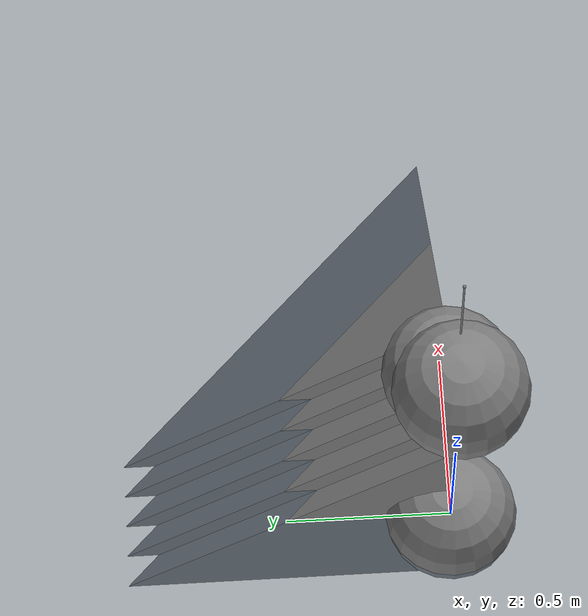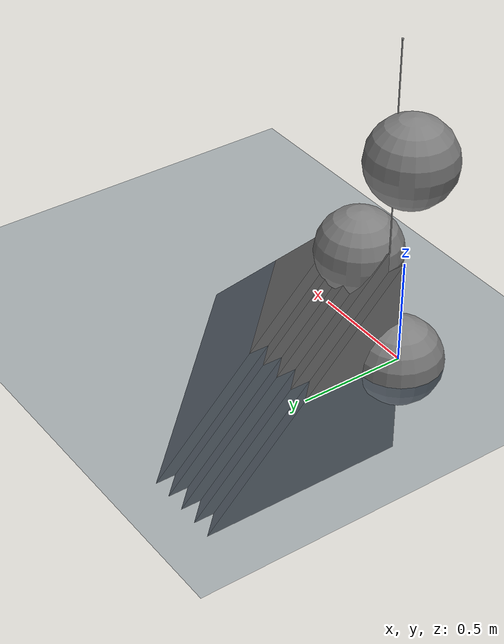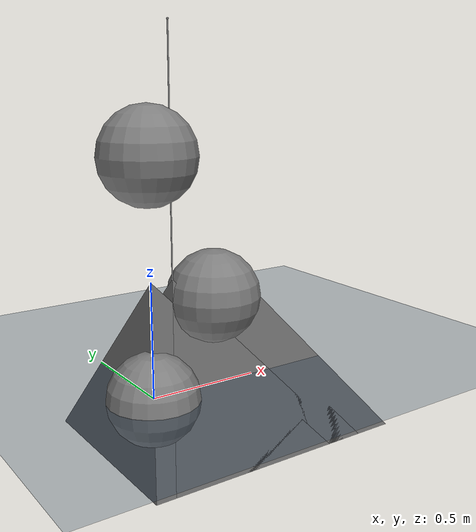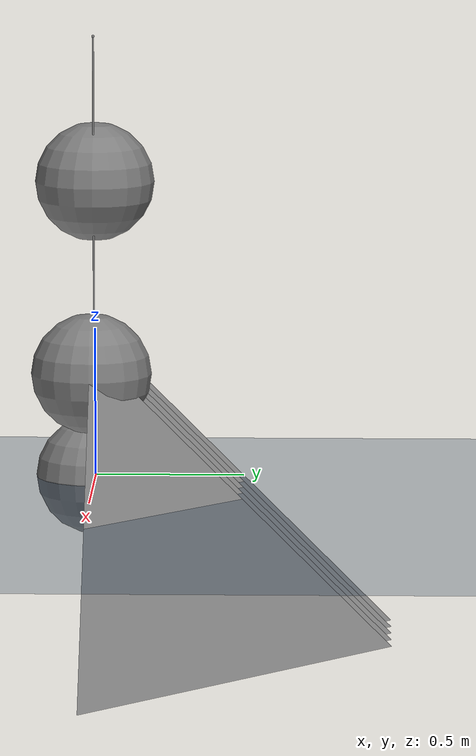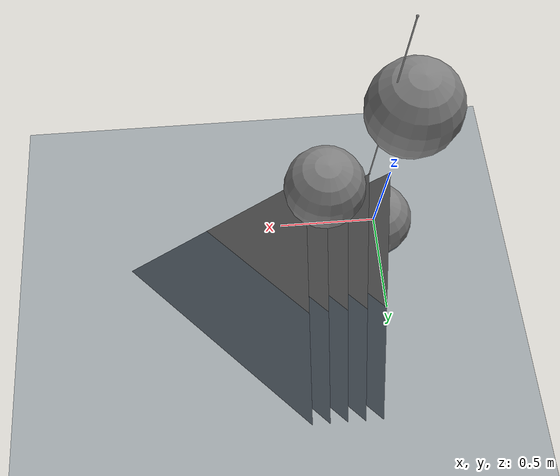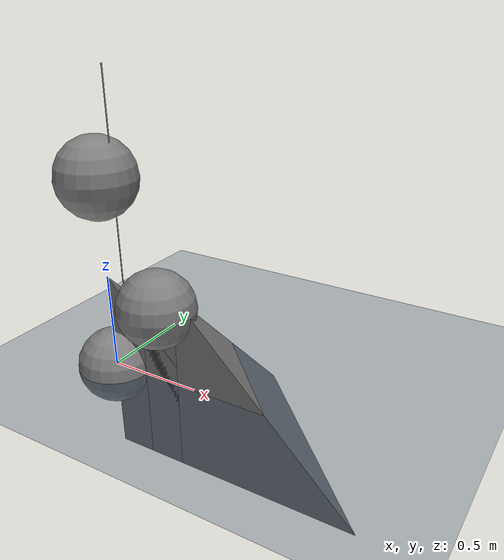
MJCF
<mujoco>
  <compiler discardvisual="false"/>

  <asset>
    <texture name="discarded_skybox" type="skybox" builtin="gradient"
             rgb1=".3 .5 .7" rgb2="0 0 0" width="32" height="512"/>

    <texture name="discarded" type="2d" builtin="checker" width="512" height="512" rgb1=".1 .2 .3" rgb2=".2 .3 .4"/>
    <material name="discarded" texture="discarded" texrepeat="1 1" texuniform="true" reflectance=".2"/>

    <mesh name="kept" vertex="0 0 0  1 0 0  0 1 0  0 0 1"/>
    <mesh name="discarded0" vertex="0 0 0  1 0 0  0 1 0  0 0 1"/>
    <mesh name="discarded1" vertex="0 0 0  1 0 0  0 1 0  0 0 1"/>
  </asset>

  <worldbody>
    <geom name="kept_floor" size="0 0 .05" type="plane" material="discarded"/>

    <body pos="0 0 -.5">
      <freejoint/>
      <geom name="discarded0" type="mesh" mesh="discarded0" contype="0" conaffinity="0"/>
    </body>

    <site name="tendon0" pos=".1 0 1.5"/>
    <geom name="kept_tendon" size="0.2" contype="0" conaffinity="0" pos="0 0 1"/>
    <body pos=".1 0 -.5">
      <site name="tendon1" pos="0 0 1"/>
      <freejoint/>
      <geom name="discarded1" type="mesh" mesh="kept" contype="0" conaffinity="0"/>
    </body>

    <body pos=".2 0 -.5">
      <geom name="kept0" type="mesh" mesh="kept"/>
    </body>

    <body pos=".3 0 -.5">
      <freejoint/>
      <geom name="kept1" type="mesh" mesh="kept"/>
    </body>

    <body pos=".4 0 -.5">
      <geom name="discarded2" type="mesh" mesh="kept" contype="0" conaffinity="0"/>
    </body>

    <geom name="kept_sensor" size="0.2" contype="0" conaffinity="0"/>

    <geom name="kept_pair" size="0.2" contype="0" conaffinity="0" pos=".3 0 .4"/>

    <geom name="kept_tuple" size="0.2" contype="0" conaffinity="0"/>
  </worldbody>

  <contact>
    <pair geom1="kept1" geom2="kept_pair"/>
  </contact>

  <tendon>
    <spatial range="0 1">
      <site site="tendon0"/>
      <geom geom="kept_tendon"/>
      <site site="tendon1"/>
    </spatial>
  </tendon>

  <sensor>
    <framepos objtype="geom" objname="kept_sensor"/>
  </sensor>

  <custom>
    <tuple name="tuple">
      <element objtype="geom" objname="kept_tuple"/>
    </tuple>
  </custom>
</mujoco>
